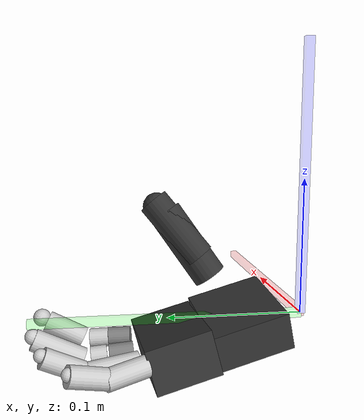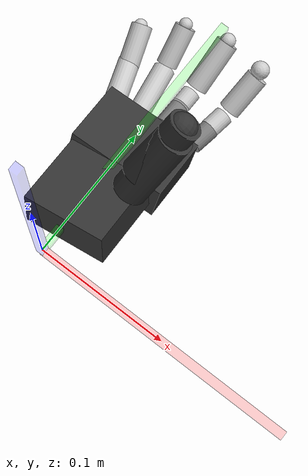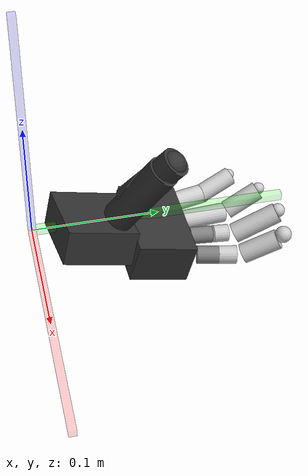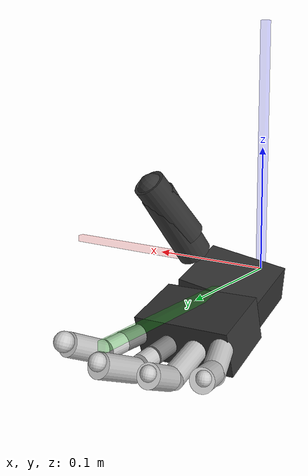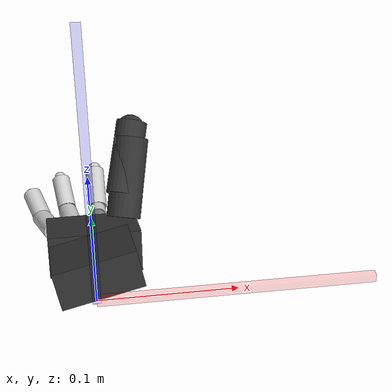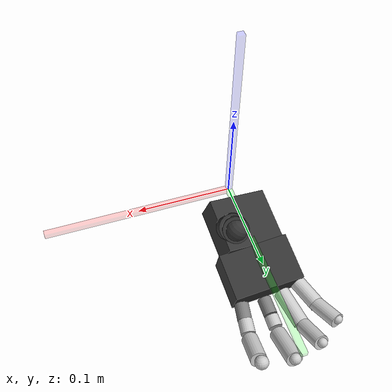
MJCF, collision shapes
<mujoco model="mia_hand">
	<compiler angle="radian" meshdir="../../meshes/" />
	<include file="include/default/mia_hand.xml" />
	<include file="include/asset/mia_hand.xml" />
	<include file="include/hand/mia_hand_misc.xml" />
	<default>
		<default class="mia_ee">
			<default class="mia_ee_translation">
				<joint type="slide" range="-.5 .5" />
				<position kp="10" ctrlrange="-.5 .5" forcerange="-5 5" />
				<default class="mia_ee_x">
					<joint axis="1 0 0" />
				</default>
				<default class="mia_ee_y">
					<joint axis="0 1 0" />
				</default>
				<default class="mia_ee_z">
					<joint axis="0 0 1" />
				</default>
			</default>
			<default class="mia_ee_orientation">
				<joint range="-1.570796 1.570796" />
				<position kp=".2" ctrlrange="-1.570796 1.570796" forcerange="-1 1" />
				<default class="mia_ee_ox">
					<joint axis="1 0 0" />
				</default>
				<default class="mia_ee_oy">
					<joint axis="0 1 0" />
				</default>
				<default class="mia_ee_oz">
					<joint axis="0 0 1" />
				</default>
			</default>
		</default>
	</default>
	<worldbody>
		<include file="mocap.xml" />
		<body gravcomp="1" name="mia_hand">
			<inertial mass="3" pos="0 0 0" diaginertia="0.00138 0.00138 0.000744" />
			<joint name="ee_X" class="mia_ee_x" />
			<joint name="ee_Y" class="mia_ee_y" />
			<joint name="ee_Z" class="mia_ee_z" />
			<joint name="ee_OX" class="mia_ee_ox" />
			<joint name="ee_OY" class="mia_ee_oy" />
			<joint name="ee_OZ" class="mia_ee_oz" />
			<geom pos="0.00303524 0.075372 -0.0252042" quat="0.991445 -0.130526 0 0" type="mesh" contype="0" conaffinity="0" group="1" density="0" rgba="0.0150198 0.0150198 0.0150198 1" mesh="dorsum_simple" />
			<geom pos="0.00380022 0.0659745 -0.0120549" quat="0.991445 -0.130526 0 0" type="mesh" contype="0" conaffinity="0" group="1" density="0" rgba="0.0150198 0.0150198 0.0150198 1" mesh="palm_simple" />
			<geom pos="-0.04 0.0152746 -0.0238927" quat="0.793353 0.608761 0 0" type="mesh" contype="0" conaffinity="0" group="1" density="0" rgba="0.202126 0.202126 0.202126 1" mesh="wrist" />
			<geom name="collision_hand_distal" size="0.0363205 0.0237669 0.0166305" pos="0.000396326 0.0951293 -0.021127" quat="0.991121 -0.130355 0.00905396 0.0246053" type="box" rgba="0.202126 0.202126 0.202126 0" />
			<geom name="collision_hand_proximal" size="0.0312073 0.0281912 0.0142893" pos="0.00128842 0.0462266 -0.00568906" quat="0.986558 -0.127037 -0.0954183 0.0382022" type="box" rgba="0.202126 0.202126 0.202126 0" />
			<body gravcomp="1" name="index_fle" pos="0.0263055 0.110217 -0.0215208" quat="0.745782 0.0196446 0.660056 -0.0880325">
				<inertial pos="-0.000244852 0.0148639 -0.000112815" quat="0.421674 0.575942 -0.409975 0.567806" mass="0.02878" diaginertia="2.72711e-05 2.64791e-05 1.53874e-06" />
				<joint name="j_index_fle" pos="0 0 0" axis="-6e-08 1.7e-08 1" limited="true" range="-1.4 1.4" damping="0.1" />
				<geom name="collision_index_pre_sensor" size="0.0071285 0.00848527" pos="0.000159719 0.023607 0.00150843" quat="0.513726 0.530536 -0.469438 0.483989" type="cylinder" />
				<geom pos="0.00484499 -0.103617 -0.0515374" quat="0.603628 0.438418 -0.470067 0.471657" type="mesh" contype="0" conaffinity="0" group="1" density="0" rgba="0.0150198 0.0150198 0.0150198 1" mesh="index_finger" />
				<geom pos="0.00484499 -0.103617 -0.0515374" quat="0.603628 0.438418 -0.470067 0.471657" type="mesh" contype="0" conaffinity="0" group="1" density="0" rgba="0.8 0.8 0.8 1" mesh="index_tip" />
				<geom name="collision_index_distal" size="0.00795739 0.0151856" pos="-0.00933691 0.0645651 0.0012231" quat="0.364714 0.63224 -0.330401 0.598407" type="cylinder" rgba="0.8 0.8 0.8 0" />
				<geom name="collision_index_post_sensor" size="0.0071285 0.00713106" pos="-0.000237046 0.039083 0.00110363" quat="0.514703 0.517518 -0.472859 0.49362" type="cylinder" rgba="0.8 0.8 0.8 0" />
				<geom name="collision_index_tip" size="0.00662717" pos="-0.02091 0.0812253 0.000522059" quat="0.716004 0.132242 -0.637523 0.251823" rgba="0.8 0.8 0.8 0" />
			</body>
			<body gravcomp="1" name="little_fle" pos="-0.02786 0.107325 -0.0206051" quat="0.684193 -0.193957 0.701244 0.0501746">
				<inertial pos="-0.00155 0.0208 -3.5793e-05" quat="0.5 0.5 -0.5 0.5" mass="0.0207" diaginertia="7.9e-06 7.686e-06 6.52e-07" />
				<joint name="j_little_fle" pos="0 0 0" axis="-6e-08 1.7e-08 1" limited="true" range="0 1.39626" damping="0.1" />
				<geom pos="0.021799 -0.0798844 -0.0421284" quat="0.424734 0.570387 -0.586878 0.387084" type="mesh" contype="0" conaffinity="0" group="1" density="0" rgba="0.0150198 0.0150198 0.0150198 1" mesh="little_finger" />
				<geom pos="0.021799 -0.0798844 -0.0421284" quat="0.424734 0.570387 -0.586878 0.387084" type="mesh" contype="0" conaffinity="0" group="1" density="0" rgba="0.8 0.8 0.8 1" mesh="little_tip" />
				<geom name="collision_little_distal" size="0.00760354 0.0149668" pos="-0.00907162 0.0523633 0.000405859" quat="0.378417 0.606914 -0.369575 0.593186" type="cylinder" rgba="0.8 0.8 0.8 0" />
				<geom name="collision_little_proximal" size="0.00782782 0.015221" pos="-0.00197874 0.0273017 -4.4674e-05" quat="0.492576 0.522025 -0.478045 0.506292" type="cylinder" rgba="0.8 0.8 0.8 0" />
				<geom name="collision_little_tip" size="0.00484472" pos="-0.0165956 0.064732 -0.000363789" quat="0.653774 0.266396 -0.707705 0.0276879" rgba="0.8 0.8 0.8 0" />
			</body>
			<body gravcomp="1" name="middle_fle" pos="0.00514942 0.113555 -0.0243453" quat="0.706434 -0.0308436 0.706434 -0.0308435">
				<inertial pos="0.00026372 0.0151445 3.45091e-07" quat="0.456126 0.538413 -0.459493 0.539376" mass="0.0298" diaginertia="2.78739e-05 2.74783e-05 1.22333e-06" />
				<joint name="j_middle_fle" pos="0 0 0" axis="-6e-08 1.7e-08 1" limited="true" range="0 1.39626" damping="0.1" />
				<geom name="collision_middle_pre_sensor" size="0.00683449 0.00891176" pos="5.4862e-05 0.0200986 0.000735957" quat="0.499613 0.500386 -0.499613 0.500386" type="cylinder" />
				<geom pos="0.0081148 -0.0979459 -0.0451494" quat="0.541675 0.45452 -0.541675 0.454519" type="mesh" contype="0" conaffinity="0" group="1" density="0" rgba="0.0150198 0.0150198 0.0150198 1" mesh="middle_finger" />
				<geom pos="0.0081148 -0.0979459 -0.0451494" quat="0.541675 0.45452 -0.541675 0.454519" type="mesh" contype="0" conaffinity="0" group="1" density="0" rgba="0.8 0.8 0.8 1" mesh="middle_tip" />
				<geom name="collision_middle_distal" size="0.00812763 0.0191194" pos="-0.00820979 0.0649226 0.00073596" quat="0.354525 0.611811 -0.354525 0.611811" type="cylinder" rgba="0.8 0.8 0.8 0" />
				<geom name="collision_middle_post_sensor" size="0.00683449 0.00591472" pos="2.96365e-05 0.0364184 0.000735957" quat="0.499613 0.500386 -0.499613 0.500386" type="cylinder" rgba="0.8 0.8 0.8 0" />
				<geom name="collision_middle_tip" size="0.00562753" pos="-0.0200957 0.0819012 0.000735962" quat="0.682871 0.183541 -0.682871 0.183541" rgba="0.8 0.8 0.8 0" />
			</body>
			<body gravcomp="1" name="ring_fle" pos="-0.0122504 0.112029 -0.0239364" quat="0.690637 -0.0971483 0.716264 0.0234158">
				<inertial pos="-0.00112 0.0264 0.000203993" quat="0.5 0.5 -0.5 0.5" mass="0.0263" diaginertia="1.61e-05 1.577e-05 9.02e-07" />
				<joint name="j_ring_fle" pos="0 0 0" axis="-6e-08 1.7e-08 1" limited="true" range="0 1.39626" damping="0.1" />
				<geom pos="0.0110461 -0.090067 -0.0435588" quat="0.488779 0.497506 -0.582505 0.417457" type="mesh" contype="0" conaffinity="0" group="1" density="0" rgba="0.0150198 0.0150198 0.0150198 1" mesh="ring_finger" />
				<geom pos="0.0110461 -0.090067 -0.0435588" quat="0.488779 0.497506 -0.582505 0.417457" type="mesh" contype="0" conaffinity="0" group="1" density="0" rgba="0.8 0.8 0.8 1" mesh="ring_tip" />
				<geom name="collision_ring_distal" size="0.00760354 0.0149668" pos="-0.00852139 0.0632753 0.000219088" quat="0.344488 0.614584 -0.34708 0.618991" type="cylinder" rgba="0.8 0.8 0.8 0" />
				<geom name="collision_ring_proximal" size="0.00782782 0.0184141" pos="0.00118691 0.0289251 0.000219103" quat="0.5 0.5 -0.5 0.5" type="cylinder" rgba="0.8 0.8 0.8 0" />
				<geom name="collision_ring_tip" size="0.00487311" pos="-0.0182312 0.0766421 -0.000189718" quat="0.664463 0.241845 -0.696364 0.122788" rgba="0.8 0.8 0.8 0" />
			</body>
			<body gravcomp="1" name="thumb_opp" pos="0.013074 0.0681082 -0.00194942" quat="0.749742 0.617038 0.239056 -0.00192418">
				<inertial pos="0.000248409 0.00768493 0.00116262" quat="0.497942 0.497555 -0.501933 0.502549" mass="0.013643" diaginertia="1.15921e-06 1.13707e-06 1.35951e-07" />
				<joint name="j_thumb_opp" pos="0 0 0" axis="-6e-08 1.7e-08 1" limited="true" range="-0.628319 0" damping="0.2" />
				<geom pos="-0.0545238 -0.0486951 0.0273073" quat="0.970439 -0.0331148 -0.188484 0.147054" type="mesh" contype="0" conaffinity="0" group="1" density="0" rgba="0.202126 0.202126 0.202126 1" mesh="thumb_metacarpus" />
				<body gravcomp="1" name="thumb_fle" pos="-3.33669e-05 0.0179874 -8.0896e-06" quat="0.690237 -0.153728 -0.690164 0.15367">
					<inertial pos="0.0127715 0.0295019 0.000170548" quat="0.499938 0.500062 -0.499886 0.500114" mass="0.0592" diaginertia="4.1e-05 4e-05 3e-06" />
					<joint name="j_thumb_fle" pos="0 0 0" axis="-6e-08 1.7e-08 1" limited="true" range="0 1.1345" damping="0.1" />
					<geom pos="-0.00356782 -0.0719755 0.0544858" quat="0.827607 0.198854 0.522146 -0.0537453" type="mesh" contype="0" conaffinity="0" group="1" density="0" rgba="0.8 0.8 0.8 1" mesh="thumb_cover" />
					<geom pos="-0.00356782 -0.0719755 0.0544858" quat="0.827607 0.198854 0.522146 -0.0537453" type="mesh" contype="0" conaffinity="0" group="1" density="0" rgba="0.202126 0.202126 0.202126 1" mesh="thumb_frame" />
					<geom name="collision_thumb_distal" size="0.0116941 0.0275092" pos="0.0156689 0.0473846 0.00140391" quat="0.736368 0.669124 0.0564767 -0.0827358" type="cylinder" rgba="0.202126 0.202126 0.202126 0" />
					<geom name="collision_thumb_proximal" size="0.0127144 0.0299092" pos="0.0156133 0.0326075 6.2179e-05" quat="0.707582 0.695412 0.0575247 -0.111445" type="cylinder" rgba="0.202126 0.202126 0.202126 0" />
					<geom name="collision_thumb_tip" size="0.0105148" pos="0.0157022 0.069964 -0.00075977" quat="0.873882 -0.262638 0.209606 0.351306" rgba="0.202126 0.202126 0.202126 0" />
				</body>
			</body>
		</body>
	</worldbody>
	<equality>
		<weld name="mocap" body1="mocap" body2="mia_hand" active="false" />
	</equality>
	<actuator>
		<position name="ee_A_X" joint="ee_X" class="mia_ee_x" />
		<position name="ee_A_Y" joint="ee_Y" class="mia_ee_y" />
		<position name="ee_A_Z" joint="ee_Z" class="mia_ee_z" />
		<position name="ee_A_OX" joint="ee_OX" class="mia_ee_ox" />
		<position name="ee_A_OY" joint="ee_OY" class="mia_ee_oy" />
		<position name="ee_A_OZ" joint="ee_OZ" class="mia_ee_oz" />
	</actuator>
</mujoco>

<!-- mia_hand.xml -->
<mujoco>
	<default>
		<default class="mia_hand_finger">
			<position forcerange="-1.75 1.75" />
			<default class="mia_thumb">
				<position ctrlrange="0 1.1345" forcerange="-3.5 3.5" />
			</default>
			<default class="mia_index">
				<position ctrlrange="-1.4 1.4" />
			</default>
			<default class="mia_mrl">
				<position ctrlrange="0 1.39626" />
			</default>
		</default>
	</default>
</mujoco>

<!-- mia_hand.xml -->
<mujoco>
	<asset>
		<mesh name="index_finger" file="stl/index_finger.stl" scale="0.000999987 0.000999987 0.000999987" />
		<mesh name="index_tip" file="stl/index_tip.stl" scale="0.000999987 0.000999987 0.000999987" />
		<mesh name="little_finger" file="stl/little_finger.stl" scale="0.000999987 0.000999987 0.000999987" />
		<mesh name="little_tip" file="stl/little_tip.stl" scale="0.000999987 0.000999987 0.000999987" />
		<mesh name="middle_finger" file="stl/middle_finger.stl" scale="0.000999987 0.000999987 0.000999987" />
		<mesh name="middle_tip" file="stl/middle_tip.stl" scale="0.000999987 0.000999987 0.000999987" />
		<mesh name="dorsum_simple" file="stl/dorsum_simple.stl" scale="0.0766738 0.104275 0.0766738" />
		<mesh name="palm_simple" file="stl/palm_simple.stl" scale="0.122027 0.122027 0.122027" />
		<mesh name="wrist" file="stl/wrist.stl" scale="0.000999999 0.000999999 0.000999999" />
		<mesh name="ring_finger" file="stl/ring_finger.stl" scale="0.000999987 0.000999987 0.000999987" />
		<mesh name="ring_tip" file="stl/ring_tip.stl" scale="0.000999987 0.000999987 0.000999987" />
		<mesh name="thumb_cover" file="stl/thumb_cover.stl" scale="0.000999988 0.000999987 0.000999987" />
		<mesh name="thumb_frame" file="stl/thumb_frame.stl" scale="0.000999988 0.000999987 0.000999987" />
		<mesh name="thumb_metacarpus" file="stl/thumb_metacarpus.stl" scale="0.000999987 0.000999987 0.000999987" />
		<mesh name="UR_flange" file="stl/UR_flange.stl" scale="0.000999999 0.000999999 0.000999999" />
	</asset>
</mujoco>

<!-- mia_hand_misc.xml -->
<mujoco>
	<actuator>
		<position name="j_thumb_fle_A" joint="j_thumb_fle" class="mia_thumb" />
		<position name="j_index_fle_A" joint="j_index_fle" class="mia_index" />
		<position name="j_middle_fle_A" joint="j_middle_fle" class="mia_mrl" />
		<position name="j_ring_fle_A" joint="j_ring_fle" class="mia_mrl" />
		<position name="j_little_fle_A" joint="j_little_fle" class="mia_mrl" />
	</actuator>
</mujoco>

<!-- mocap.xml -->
<mujoco>
	<body name="mocap" mocap="true">
		<site size="0.003 0.003 0.1" pos="0 0 0.1" type="box" name="mocap_left_site1" rgba="0 0 1 .1" />
		<site size="0.003 0.1 0.003" pos="0 0.1 0" type="box" name="mocap_left_site2" rgba="0 1 0 .1" />
		<site size="0.1 0.003 0.003" pos="0.1 0 0" type="box" name="mocap_left_site3" rgba="1 0 0 .1" />
	</body>
</mujoco>
